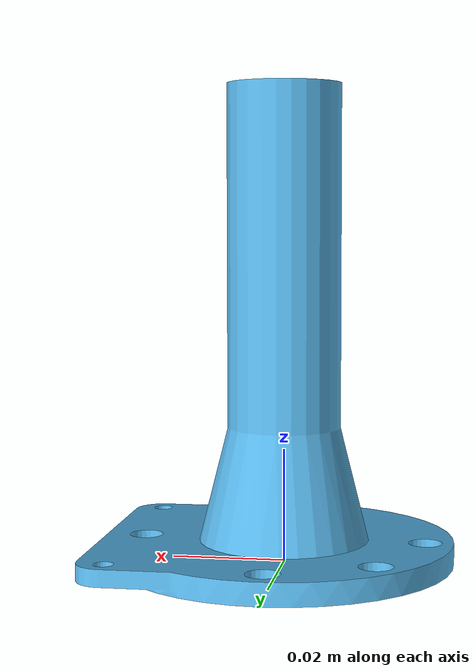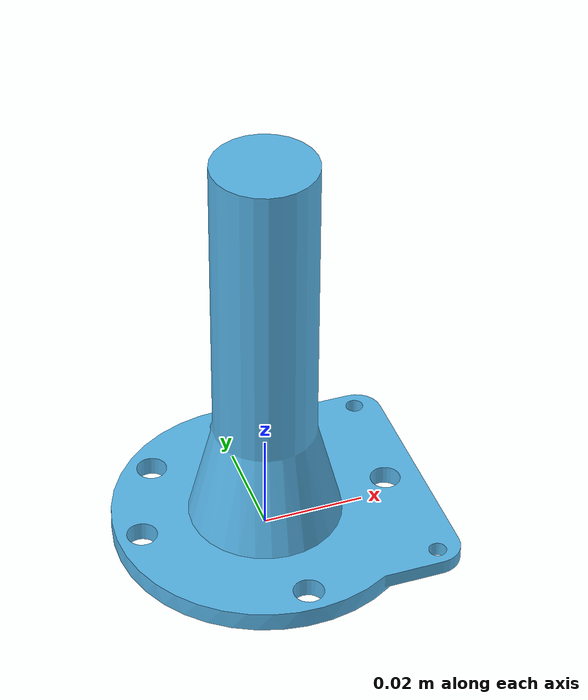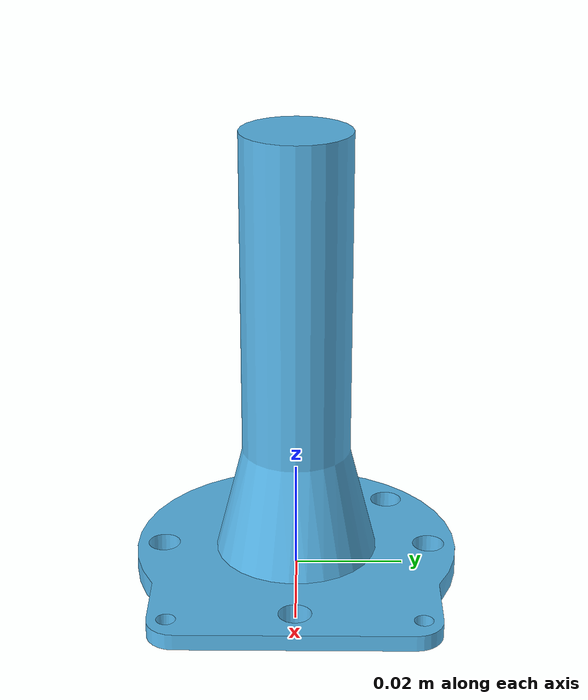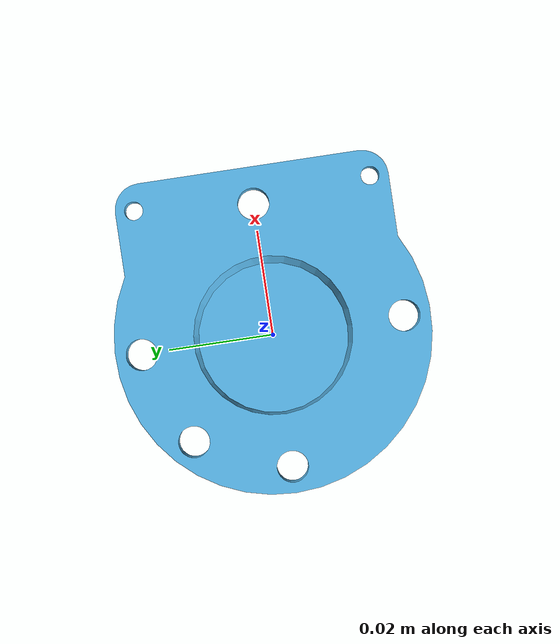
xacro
<?xml version="1.0" ?>
<robot name="suction_mount" xmlns:xacro="http://ros.org/wiki/xacro">
  <link name="base_link"/>

  <joint name="base_to_tool0" type="fixed">
    <parent link="base_link"/>
    <child link="basetool"/>
    <origin xyz="0 0 0" rpy="0 0 0.785398163"/>
  </joint>

<xacro:include filename="$(find realsense2_camera)/urdf/_d435.urdf.xacro"/>

<link name="basetool">
<visual>
 <origin xyz="0 0 0" rpy="-1.570796327 0 0"/>
  <geometry>
    <mesh filename="package://auto_labeller/urdf/model_panda_vacuum.stl"
    scale="0.001 0.001 0.001"/>
  </geometry>
</visual>
<collision>
<origin xyz="0 0 0" rpy="-1.570796327 0 0"/>
  <geometry>
    <mesh filename="package://auto_labeller/urdf/model_panda_vacuum.stl"
    scale="0.001 0.001 0.001"/>

  </geometry>
</collision>
<inertial>
  <origin xyz="0 0 0" rpy="0 0 0" />
  <mass value="0.68" />
  <inertia ixx="0.1" ixy="0.0" ixz="0.0" iyy="0.1" iyz="0.0" izz="0.1" />
</inertial>
</link>
<link name="shift_origin"/>

<joint name="camera_framejoint" type="fixed">
  <parent link="base_link"/>
  <child link="shift_origin"/>
  <origin xyz="0.027 0 0.004 " rpy="0 0 0 "/>
</joint>

</robot>
